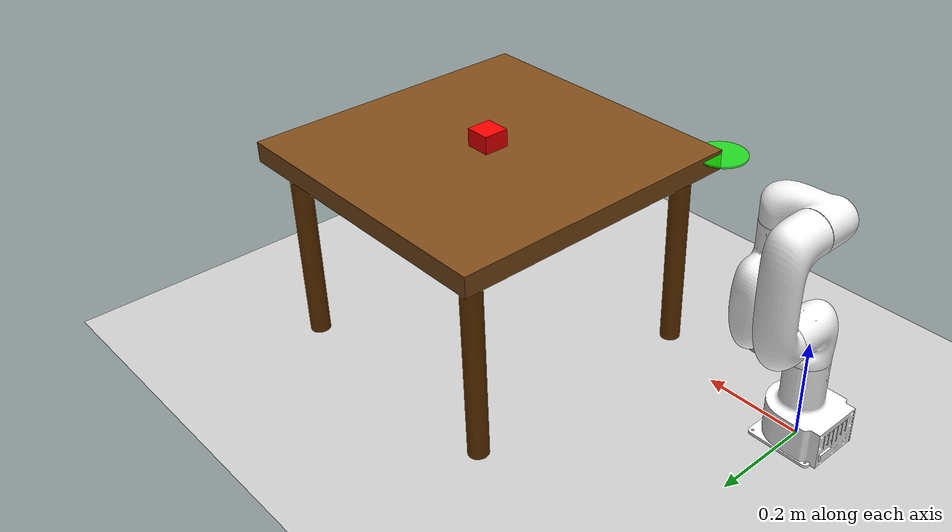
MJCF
<mujoco model="pick_place_scene">
  <include file="/home/yasmine/ros2_ws/src/mon_bras_pick_place/models/lite6.xml"/>

  <worldbody>
    <geom name="floor" type="plane" size="2 2 0.1" rgba="0.8 0.8 0.8 1"/>

    <body name="table" pos="0.6 0.2 0">
      <geom name="table_top" type="box" size="0.3 0.3 0.02" pos="0 0 0.4" rgba="0.5 0.3 0.1 1"/>
      <geom name="leg1" type="cylinder" size="0.02 0.2" pos="0.25 0.25 0.2" rgba="0.4 0.2 0.0 1"/>
      <geom name="leg2" type="cylinder" size="0.02 0.2" pos="-0.25 0.25 0.2" rgba="0.4 0.2 0.0 1"/>
      <geom name="leg3" type="cylinder" size="0.02 0.2" pos="0.25 -0.25 0.2" rgba="0.4 0.2 0.0 1"/>
      <geom name="leg4" type="cylinder" size="0.02 0.2" pos="-0.25 -0.25 0.2" rgba="0.4 0.2 0.0 1"/>
    </body>

    <body name="box" pos="0.6 0.2 0.43">
      <geom name="box_geom" type="box" size="0.025 0.025 0.025" rgba="1 0 0 1"/>
      <freejoint/>
    </body>

    <body name="drop_zone" pos="0.3 -0.1 0.41">
      <geom name="drop_marker" type="cylinder" size="0.05 0.002" rgba="0 1 0 0.7"/>
    </body>
  </worldbody>

  <statistic center="0.4 0 0.5" extent="1.5"/>
</mujoco>

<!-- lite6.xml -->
<mujoco model="ufactory_lite6">
  <compiler angle="radian" meshdir="assets"
autolimits="true"/>

  <option integrator="implicitfast"/>

  <default>
    <default
class="lite6">
      <geom type="mesh"/>
      <joint axis="0 0 1" damping="1"
armature="0.1"/>
      <position kp="2000" kv="200"/>
      <default
class="size1">
        <position forcerange="-50 50"/>
      </default>
      <default
class="size2">
        <position forcerange="-32 32"/>
      </default>

<default class="size3">
        <position forcerange="-20 20"/>
      </default>

<default class="visual">
        <geom contype="0" conaffinity="0" group="2"
material="white"/>
      </default>
      <default class="collision">

<geom group="3" mass="0" density="0"/>
      </default>
      <site size="0.001"
rgba="0.5 0.5 0.5 0.3" group="4"/>
    </default>
  </default>

  <asset>

<material name="white" rgba="1 1 1 1"/>
    <material name="silver" rgba=".753 .753
.753 1"/>

    <mesh file="visual/link_base.stl"/>
    <mesh
file="visual/link1.stl"/>
    <mesh file="visual/link2.stl"/>
    <mesh file="visual/link3.stl"/>

 <mesh file="visual/link4.stl"/>
    <mesh file="visual/link5.stl"/>
    <mesh
file="visual/link6.stl"/>
    <mesh name="link_base_c"
file="collision/link_base.stl"/>
    <mesh name="link1_c" file="collision/link1.stl"/>
    <mesh
name="link2_c" file="collision/link2.stl"/>
    <mesh name="link3_c"
file="collision/link3.stl"/>
    <mesh name="link4_c" file="collision/link4.stl"/>
    <mesh
name="link5_c" file="collision/link5.stl"/>
    <mesh name="link6_c"
file="collision/link6.stl"/>
  </asset>

  <worldbody>
    <body name="link_base"
childclass="lite6">
      <inertial pos="-0.00829545 3.26357e-05 0.0631195" mass="1.65394"
diaginertia="0 0 0"/>
      <geom class="visual" mesh="link_base"/>
      <geom
name="link_base_c" class="collision" mesh="link_base_c"/>
      <body name="link1"
pos="0 0 0.2435">
        <inertial pos="-0.00036 0.04195 -0.0025" quat="0.608059
0.792349 -0.0438707 0.0228718" mass="1.411"
          diaginertia="0.00145276
0.00135275 0.000853355"/>
        <joint name="joint1" range="-6.28319
6.28319"/>
        <geom class="visual" mesh="link1"/>
        <geom name="link1_c"
class="collision" mesh="link1_c"/>
        <body name="link2" quat="-1 1 1 1">

  <inertial pos="0.179 0 0.0584" quat="0.417561 0.571619 0.569585 0.417693"
mass="1.34"
            diaginertia="0.00560971 0.0052152 0.00122018"/>

<joint name="joint2" range="-2.61799 2.61799"/>
          <geom class="visual"
mesh="link2"/>
          <geom name="link2_c" class="collision" mesh="link2_c"/>

        <body name="link3" pos="0.2002 0 0" quat="-2.59734e-06 -0.707105
-0.707108 -2.59735e-06">
            <inertial pos="0.072 -0.0357 -0.001"
quat="0.128259 0.662963 -0.167256 0.71837" mass="0.953"
              diaginertia="0.0018521
0.00175546 0.000703807"/>
            <joint name="joint3" range="-0.061087
5.23599"/>
            <geom class="visual" mesh="link3"/>
            <geom
name="link3_c" class="collision" mesh="link3_c"/>
            <body name="link4"
pos="0.087 -0.22761 0" quat="0.707105 0.707108 0 0">
              <inertial
pos="-0.002 -0.0285 -0.0813" quat="0.975248 0.22109 0.00203498 -0.00262178"
mass="1.284"
                diaginertia="0.00370503 0.00349091 0.00109586"/>

<joint name="joint4" range="-6.28319 6.28319"/>
              <geom
class="visual" mesh="link4"/>
              <geom name="link4_c" class="collision"
mesh="link4_c"/>
              <body name="link5" quat="1 1 0 0">

<inertial pos="0 0.01 0.0019" quat="0.71423 0.696388 -0.0531933 0.0456997"
mass="0.804"
                  diaginertia="0.000567553 0.000529266 0.000507681"/>

      <joint name="joint5" range="-2.1642 2.1642"/>
                <geom
class="visual" mesh="link5"/>
                <geom name="link5_c" class="collision"
mesh="link5_c"/>
                <body name="link6" pos="0 0.0625 0" quat="1 -1
0 0">
                  <inertial pos="0 -0.00194 -0.0102" quat="-0.0376023
0.704057 0.0446838 0.707738" mass="0.13"

diaginertia="0.000148148 8.57757e-05 7.71412e-05"/>
                  <joint name="joint6"
range="-6.28319 6.28319"/>
                  <geom class="visual" mesh="link6"
material="silver"/>
                  <geom name="link6_c" class="collision"
mesh="link6_c"/>
                  <site name="attachment_site"/>
                </body>

       </body>
            </body>
          </body>
        </body>

</body>
    </body>
  </worldbody>

  <actuator>
    <position joint="joint1"
class="size1" ctrlrange="-6.28319 6.28319"/>
    <position joint="joint2"
class="size1" ctrlrange="-2.61799 2.61799"/>
    <position joint="joint3" class="size2"
ctrlrange="-0.061087 5.23599"/>
    <position joint="joint4" class="size2"
ctrlrange="-6.28319 6.28319"/>
    <position joint="joint5" class="size2"
ctrlrange="-2.1642 2.1642"/>
    <position joint="joint6" class="size3" ctrlrange="-6.28319
6.28319"/>
  </actuator>

  <keyframe>
    <key name="home" qpos="0 0 1.57 0 1.57
0" ctrl="0 0 1.57 0 1.57 0"/>
  </keyframe>
</mujoco>
